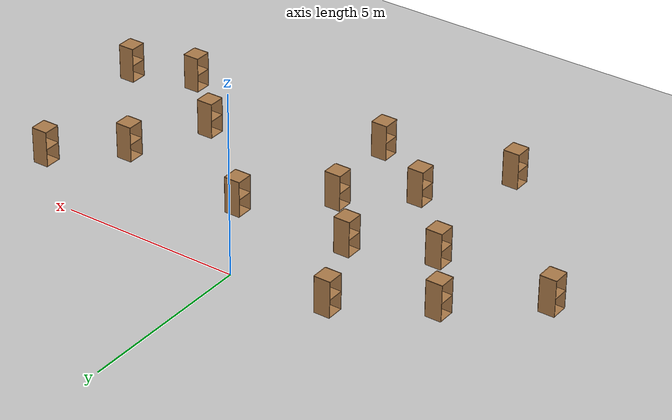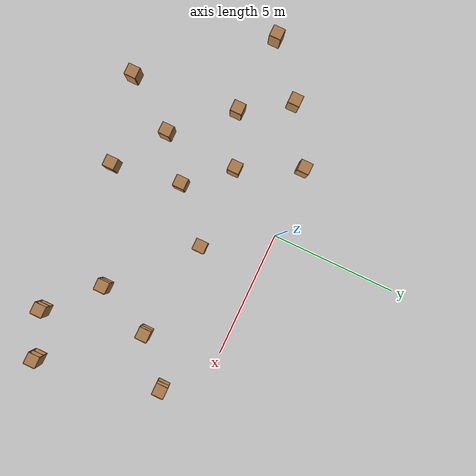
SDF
<sdf version="1.6">
 <world name="default">
  <model name="ground_plane">
   <static>1</static>
   <link name="link">
    <collision name="collision">
     <geometry><plane><normal>0 0 1</normal><size>100 100</size></plane></geometry>
     <surface><friction><ode><mu>100</mu><mu2>50</mu2></ode></friction></surface>
    </collision>
    <visual name="visual">
     <cast_shadows>0</cast_shadows>
     <geometry><plane><normal>0 0 1</normal><size>100 100</size></plane></geometry>
     <material>
      <script><uri>file://media/materials/scripts/gazebo.material</uri><name>Gazebo/Grey</name></script>
     </material>
    </visual>
   </link>
  </model>
  <model name="cabinet_3">
   <static>1</static>
   <link name="cabinet_bottom_plate">
    <inertial>
     <pose>0 0 -1 0 -0 0</pose>
     <inertia><ixx>2.05</ixx><ixy>0</ixy><ixz>0</ixz><iyy>2.05</iyy><iyz>0</iyz><izz>2.05</izz></inertia>
     <mass>25</mass>
    </inertial>
    <collision name="cabinet_bottom_plate_geom">
     <pose>0 0 0.01 0 -0 0</pose>
     <geometry><box><size>0.45 0.45 0.02</size></box></geometry>
    </collision>
    <visual name="cabinet_bottom_plate_geom_visual">
     <pose>0 0 0.01 0 -0 0</pose>
     <geometry><box><size>0.45 0.45 0.02</size></box></geometry>
     <material>
      <script><uri>file://media/materials/scripts/gazebo.material</uri><name>Gazebo/Wood</name></script>
     </material>
    </visual>
    <collision name="cabinet_bottom_plate_geom_cabinet_back_plate">
     <pose>0.235 0 0.51 0 -0 0</pose>
     <geometry><box><size>0.02 0.45 1.02</size></box></geometry>
    </collision>
    <visual name="cabinet_bottom_plate_geom_cabinet_back_plate_visual">
     <pose>0.235 0 0.51 0 -0 0</pose>
     <geometry><box><size>0.02 0.45 1.02</size></box></geometry>
     <material>
      <script><uri>file://media/materials/scripts/gazebo.material</uri><name>Gazebo/Wood</name></script>
     </material>
    </visual>
    <collision name="cabinet_bottom_plate_geom_cabinet_left_plate">
     <pose>0 0.235 0.51 0 -0 0</pose>
     <geometry><box><size>0.45 0.02 1.02</size></box></geometry>
    </collision>
    <visual name="cabinet_bottom_plate_geom_cabinet_left_plate_visual">
     <pose>0 0.235 0.51 0 -0 0</pose>
     <geometry><box><size>0.45 0.02 1.02</size></box></geometry>
     <material>
      <script><uri>file://media/materials/scripts/gazebo.material</uri><name>Gazebo/Wood</name></script>
     </material>
    </visual>
    <collision name="cabinet_bottom_plate_geom_cabinet_middle_plate">
     <pose>0 0 0.51 0 -0 0</pose>
     <geometry><box><size>0.45 0.45 0.02</size></box></geometry>
    </collision>
    <visual name="cabinet_bottom_plate_geom_cabinet_middle_plate_visual">
     <pose>0 0 0.51 0 -0 0</pose>
     <geometry><box><size>0.45 0.45 0.02</size></box></geometry>
     <material>
      <script><uri>file://media/materials/scripts/gazebo.material</uri><name>Gazebo/Wood</name></script>
     </material>
    </visual>
    <collision name="cabinet_bottom_plate_geom_cabinet_right_plate">
     <pose>0 -0.235 0.51 0 -0 0</pose>
     <geometry><box><size>0.45 0.02 1.02</size></box></geometry>
    </collision>
    <visual name="cabinet_bottom_plate_geom_cabinet_right_plate_visual">
     <pose>0 -0.235 0.51 0 -0 0</pose>
     <geometry><box><size>0.45 0.02 1.02</size></box></geometry>
     <material>
      <script><uri>file://media/materials/scripts/gazebo.material</uri><name>Gazebo/Wood</name></script>
     </material>
    </visual>
    <collision name="cabinet_bottom_plate_geom_cabinet_top_plate">
     <pose>0 0 1.01 0 -0 0</pose>
     <geometry><box><size>0.45 0.45 0.02</size></box></geometry>
    </collision>
    <visual name="cabinet_bottom_plate_geom_cabinet_top_plate_visual">
     <pose>0 0 1.01 0 -0 0</pose>
     <geometry><box><size>0.45 0.45 0.02</size></box></geometry>
     <material>
      <script><uri>file://media/materials/scripts/gazebo.material</uri><name>Gazebo/Wood</name></script>
     </material>
    </visual>
   </link>
   <pose>7.07993 -1.47835 0 0 -0 0</pose>
  </model>
  <model name="cabinet_4">
   <static>1</static>
   <link name="cabinet_bottom_plate">
    <inertial>
     <pose>0 0 -1 0 -0 0</pose>
     <inertia><ixx>2.05</ixx><ixy>0</ixy><ixz>0</ixz><iyy>2.05</iyy><iyz>0</iyz><izz>2.05</izz></inertia>
     <mass>25</mass>
    </inertial>
    <collision name="cabinet_bottom_plate_geom">
     <pose>0 0 0.01 0 -0 0</pose>
     <geometry><box><size>0.45 0.45 0.02</size></box></geometry>
    </collision>
    <visual name="cabinet_bottom_plate_geom_visual">
     <pose>0 0 0.01 0 -0 0</pose>
     <geometry><box><size>0.45 0.45 0.02</size></box></geometry>
     <material>
      <script><uri>file://media/materials/scripts/gazebo.material</uri><name>Gazebo/Wood</name></script>
     </material>
    </visual>
    <collision name="cabinet_bottom_plate_geom_cabinet_back_plate">
     <pose>0.235 0 0.51 0 -0 0</pose>
     <geometry><box><size>0.02 0.45 1.02</size></box></geometry>
    </collision>
    <visual name="cabinet_bottom_plate_geom_cabinet_back_plate_visual">
     <pose>0.235 0 0.51 0 -0 0</pose>
     <geometry><box><size>0.02 0.45 1.02</size></box></geometry>
     <material>
      <script><uri>file://media/materials/scripts/gazebo.material</uri><name>Gazebo/Wood</name></script>
     </material>
    </visual>
    <collision name="cabinet_bottom_plate_geom_cabinet_left_plate">
     <pose>0 0.235 0.51 0 -0 0</pose>
     <geometry><box><size>0.45 0.02 1.02</size></box></geometry>
    </collision>
    <visual name="cabinet_bottom_plate_geom_cabinet_left_plate_visual">
     <pose>0 0.235 0.51 0 -0 0</pose>
     <geometry><box><size>0.45 0.02 1.02</size></box></geometry>
     <material>
      <script><uri>file://media/materials/scripts/gazebo.material</uri><name>Gazebo/Wood</name></script>
     </material>
    </visual>
    <collision name="cabinet_bottom_plate_geom_cabinet_middle_plate">
     <pose>0 0 0.51 0 -0 0</pose>
     <geometry><box><size>0.45 0.45 0.02</size></box></geometry>
    </collision>
    <visual name="cabinet_bottom_plate_geom_cabinet_middle_plate_visual">
     <pose>0 0 0.51 0 -0 0</pose>
     <geometry><box><size>0.45 0.45 0.02</size></box></geometry>
     <material>
      <script><uri>file://media/materials/scripts/gazebo.material</uri><name>Gazebo/Wood</name></script>
     </material>
    </visual>
    <collision name="cabinet_bottom_plate_geom_cabinet_right_plate">
     <pose>0 -0.235 0.51 0 -0 0</pose>
     <geometry><box><size>0.45 0.02 1.02</size></box></geometry>
    </collision>
    <visual name="cabinet_bottom_plate_geom_cabinet_right_plate_visual">
     <pose>0 -0.235 0.51 0 -0 0</pose>
     <geometry><box><size>0.45 0.02 1.02</size></box></geometry>
     <material>
      <script><uri>file://media/materials/scripts/gazebo.material</uri><name>Gazebo/Wood</name></script>
     </material>
    </visual>
    <collision name="cabinet_bottom_plate_geom_cabinet_top_plate">
     <pose>0 0 1.01 0 -0 0</pose>
     <geometry><box><size>0.45 0.45 0.02</size></box></geometry>
    </collision>
    <visual name="cabinet_bottom_plate_geom_cabinet_top_plate_visual">
     <pose>0 0 1.01 0 -0 0</pose>
     <geometry><box><size>0.45 0.45 0.02</size></box></geometry>
     <material>
      <script><uri>file://media/materials/scripts/gazebo.material</uri><name>Gazebo/Wood</name></script>
     </material>
    </visual>
   </link>
   <pose>8.0931 -6.2604 0 0 -0 0</pose>
  </model>
  <model name="cabinet_5">
   <static>1</static>
   <link name="cabinet_bottom_plate">
    <inertial>
     <pose>0 0 -1 0 -0 0</pose>
     <inertia><ixx>2.05</ixx><ixy>0</ixy><ixz>0</ixz><iyy>2.05</iyy><iyz>0</iyz><izz>2.05</izz></inertia>
     <mass>25</mass>
    </inertial>
    <collision name="cabinet_bottom_plate_geom">
     <pose>0 0 0.01 0 -0 0</pose>
     <geometry><box><size>0.45 0.45 0.02</size></box></geometry>
    </collision>
    <visual name="cabinet_bottom_plate_geom_visual">
     <pose>0 0 0.01 0 -0 0</pose>
     <geometry><box><size>0.45 0.45 0.02</size></box></geometry>
     <material>
      <script><uri>file://media/materials/scripts/gazebo.material</uri><name>Gazebo/Wood</name></script>
     </material>
    </visual>
    <collision name="cabinet_bottom_plate_geom_cabinet_back_plate">
     <pose>0.235 0 0.51 0 -0 0</pose>
     <geometry><box><size>0.02 0.45 1.02</size></box></geometry>
    </collision>
    <visual name="cabinet_bottom_plate_geom_cabinet_back_plate_visual">
     <pose>0.235 0 0.51 0 -0 0</pose>
     <geometry><box><size>0.02 0.45 1.02</size></box></geometry>
     <material>
      <script><uri>file://media/materials/scripts/gazebo.material</uri><name>Gazebo/Wood</name></script>
     </material>
    </visual>
    <collision name="cabinet_bottom_plate_geom_cabinet_left_plate">
     <pose>0 0.235 0.51 0 -0 0</pose>
     <geometry><box><size>0.45 0.02 1.02</size></box></geometry>
    </collision>
    <visual name="cabinet_bottom_plate_geom_cabinet_left_plate_visual">
     <pose>0 0.235 0.51 0 -0 0</pose>
     <geometry><box><size>0.45 0.02 1.02</size></box></geometry>
     <material>
      <script><uri>file://media/materials/scripts/gazebo.material</uri><name>Gazebo/Wood</name></script>
     </material>
    </visual>
    <collision name="cabinet_bottom_plate_geom_cabinet_middle_plate">
     <pose>0 0 0.51 0 -0 0</pose>
     <geometry><box><size>0.45 0.45 0.02</size></box></geometry>
    </collision>
    <visual name="cabinet_bottom_plate_geom_cabinet_middle_plate_visual">
     <pose>0 0 0.51 0 -0 0</pose>
     <geometry><box><size>0.45 0.45 0.02</size></box></geometry>
     <material>
      <script><uri>file://media/materials/scripts/gazebo.material</uri><name>Gazebo/Wood</name></script>
     </material>
    </visual>
    <collision name="cabinet_bottom_plate_geom_cabinet_right_plate">
     <pose>0 -0.235 0.51 0 -0 0</pose>
     <geometry><box><size>0.45 0.02 1.02</size></box></geometry>
    </collision>
    <visual name="cabinet_bottom_plate_geom_cabinet_right_plate_visual">
     <pose>0 -0.235 0.51 0 -0 0</pose>
     <geometry><box><size>0.45 0.02 1.02</size></box></geometry>
     <material>
      <script><uri>file://media/materials/scripts/gazebo.material</uri><name>Gazebo/Wood</name></script>
     </material>
    </visual>
    <collision name="cabinet_bottom_plate_geom_cabinet_top_plate">
     <pose>0 0 1.01 0 -0 0</pose>
     <geometry><box><size>0.45 0.45 0.02</size></box></geometry>
    </collision>
    <visual name="cabinet_bottom_plate_geom_cabinet_top_plate_visual">
     <pose>0 0 1.01 0 -0 0</pose>
     <geometry><box><size>0.45 0.45 0.02</size></box></geometry>
     <material>
      <script><uri>file://media/materials/scripts/gazebo.material</uri><name>Gazebo/Wood</name></script>
     </material>
    </visual>
   </link>
   <pose>5.48638 -2.93492 0 0 -0 0</pose>
  </model>
  <model name="cabinet_6">
   <static>1</static>
   <link name="cabinet_bottom_plate">
    <inertial>
     <pose>0 0 -1 0 -0 0</pose>
     <inertia><ixx>2.05</ixx><ixy>0</ixy><ixz>0</ixz><iyy>2.05</iyy><iyz>0</iyz><izz>2.05</izz></inertia>
     <mass>25</mass>
    </inertial>
    <collision name="cabinet_bottom_plate_geom">
     <pose>0 0 0.01 0 -0 0</pose>
     <geometry><box><size>0.45 0.45 0.02</size></box></geometry>
    </collision>
    <visual name="cabinet_bottom_plate_geom_visual">
     <pose>0 0 0.01 0 -0 0</pose>
     <geometry><box><size>0.45 0.45 0.02</size></box></geometry>
     <material>
      <script><uri>file://media/materials/scripts/gazebo.material</uri><name>Gazebo/Wood</name></script>
     </material>
    </visual>
    <collision name="cabinet_bottom_plate_geom_cabinet_back_plate">
     <pose>0.235 0 0.51 0 -0 0</pose>
     <geometry><box><size>0.02 0.45 1.02</size></box></geometry>
    </collision>
    <visual name="cabinet_bottom_plate_geom_cabinet_back_plate_visual">
     <pose>0.235 0 0.51 0 -0 0</pose>
     <geometry><box><size>0.02 0.45 1.02</size></box></geometry>
     <material>
      <script><uri>file://media/materials/scripts/gazebo.material</uri><name>Gazebo/Wood</name></script>
     </material>
    </visual>
    <collision name="cabinet_bottom_plate_geom_cabinet_left_plate">
     <pose>0 0.235 0.51 0 -0 0</pose>
     <geometry><box><size>0.45 0.02 1.02</size></box></geometry>
    </collision>
    <visual name="cabinet_bottom_plate_geom_cabinet_left_plate_visual">
     <pose>0 0.235 0.51 0 -0 0</pose>
     <geometry><box><size>0.45 0.02 1.02</size></box></geometry>
     <material>
      <script><uri>file://media/materials/scripts/gazebo.material</uri><name>Gazebo/Wood</name></script>
     </material>
    </visual>
    <collision name="cabinet_bottom_plate_geom_cabinet_middle_plate">
     <pose>0 0 0.51 0 -0 0</pose>
     <geometry><box><size>0.45 0.45 0.02</size></box></geometry>
    </collision>
    <visual name="cabinet_bottom_plate_geom_cabinet_middle_plate_visual">
     <pose>0 0 0.51 0 -0 0</pose>
     <geometry><box><size>0.45 0.45 0.02</size></box></geometry>
     <material>
      <script><uri>file://media/materials/scripts/gazebo.material</uri><name>Gazebo/Wood</name></script>
     </material>
    </visual>
    <collision name="cabinet_bottom_plate_geom_cabinet_right_plate">
     <pose>0 -0.235 0.51 0 -0 0</pose>
     <geometry><box><size>0.45 0.02 1.02</size></box></geometry>
    </collision>
    <visual name="cabinet_bottom_plate_geom_cabinet_right_plate_visual">
     <pose>0 -0.235 0.51 0 -0 0</pose>
     <geometry><box><size>0.45 0.02 1.02</size></box></geometry>
     <material>
      <script><uri>file://media/materials/scripts/gazebo.material</uri><name>Gazebo/Wood</name></script>
     </material>
    </visual>
    <collision name="cabinet_bottom_plate_geom_cabinet_top_plate">
     <pose>0 0 1.01 0 -0 0</pose>
     <geometry><box><size>0.45 0.45 0.02</size></box></geometry>
    </collision>
    <visual name="cabinet_bottom_plate_geom_cabinet_top_plate_visual">
     <pose>0 0 1.01 0 -0 0</pose>
     <geometry><box><size>0.45 0.45 0.02</size></box></geometry>
     <material>
      <script><uri>file://media/materials/scripts/gazebo.material</uri><name>Gazebo/Wood</name></script>
     </material>
    </visual>
   </link>
   <pose>4.53058 -5.11799 0 0 -0 0</pose>
  </model>
  <model name="cabinet_8">
   <static>1</static>
   <link name="cabinet_bottom_plate">
    <inertial>
     <pose>0 0 -1 0 -0 0</pose>
     <inertia><ixx>2.05</ixx><ixy>0</ixy><ixz>0</ixz><iyy>2.05</iyy><iyz>0</iyz><izz>2.05</izz></inertia>
     <mass>25</mass>
    </inertial>
    <collision name="cabinet_bottom_plate_geom">
     <pose>0 0 0.01 0 -0 0</pose>
     <geometry><box><size>0.45 0.45 0.02</size></box></geometry>
    </collision>
    <visual name="cabinet_bottom_plate_geom_visual">
     <pose>0 0 0.01 0 -0 0</pose>
     <geometry><box><size>0.45 0.45 0.02</size></box></geometry>
     <material>
      <script><uri>file://media/materials/scripts/gazebo.material</uri><name>Gazebo/Wood</name></script>
     </material>
    </visual>
    <collision name="cabinet_bottom_plate_geom_cabinet_back_plate">
     <pose>0.235 0 0.51 0 -0 0</pose>
     <geometry><box><size>0.02 0.45 1.02</size></box></geometry>
    </collision>
    <visual name="cabinet_bottom_plate_geom_cabinet_back_plate_visual">
     <pose>0.235 0 0.51 0 -0 0</pose>
     <geometry><box><size>0.02 0.45 1.02</size></box></geometry>
     <material>
      <script><uri>file://media/materials/scripts/gazebo.material</uri><name>Gazebo/Wood</name></script>
     </material>
    </visual>
    <collision name="cabinet_bottom_plate_geom_cabinet_left_plate">
     <pose>0 0.235 0.51 0 -0 0</pose>
     <geometry><box><size>0.45 0.02 1.02</size></box></geometry>
    </collision>
    <visual name="cabinet_bottom_plate_geom_cabinet_left_plate_visual">
     <pose>0 0.235 0.51 0 -0 0</pose>
     <geometry><box><size>0.45 0.02 1.02</size></box></geometry>
     <material>
      <script><uri>file://media/materials/scripts/gazebo.material</uri><name>Gazebo/Wood</name></script>
     </material>
    </visual>
    <collision name="cabinet_bottom_plate_geom_cabinet_middle_plate">
     <pose>0 0 0.51 0 -0 0</pose>
     <geometry><box><size>0.45 0.45 0.02</size></box></geometry>
    </collision>
    <visual name="cabinet_bottom_plate_geom_cabinet_middle_plate_visual">
     <pose>0 0 0.51 0 -0 0</pose>
     <geometry><box><size>0.45 0.45 0.02</size></box></geometry>
     <material>
      <script><uri>file://media/materials/scripts/gazebo.material</uri><name>Gazebo/Wood</name></script>
     </material>
    </visual>
    <collision name="cabinet_bottom_plate_geom_cabinet_right_plate">
     <pose>0 -0.235 0.51 0 -0 0</pose>
     <geometry><box><size>0.45 0.02 1.02</size></box></geometry>
    </collision>
    <visual name="cabinet_bottom_plate_geom_cabinet_right_plate_visual">
     <pose>0 -0.235 0.51 0 -0 0</pose>
     <geometry><box><size>0.45 0.02 1.02</size></box></geometry>
     <material>
      <script><uri>file://media/materials/scripts/gazebo.material</uri><name>Gazebo/Wood</name></script>
     </material>
    </visual>
    <collision name="cabinet_bottom_plate_geom_cabinet_top_plate">
     <pose>0 0 1.01 0 -0 0</pose>
     <geometry><box><size>0.45 0.45 0.02</size></box></geometry>
    </collision>
    <visual name="cabinet_bottom_plate_geom_cabinet_top_plate_visual">
     <pose>0 0 1.01 0 -0 0</pose>
     <geometry><box><size>0.45 0.45 0.02</size></box></geometry>
     <material>
      <script><uri>file://media/materials/scripts/gazebo.material</uri><name>Gazebo/Wood</name></script>
     </material>
    </visual>
   </link>
   <pose>6.33507 -6.86628 0 0 -0 0</pose>
  </model>
  <model name="cabinet_17">
   <static>1</static>
   <link name="cabinet_bottom_plate">
    <inertial>
     <pose>0 0 -1 0 -0 0</pose>
     <inertia><ixx>2.05</ixx><ixy>0</ixy><ixz>0</ixz><iyy>2.05</iyy><iyz>0</iyz><izz>2.05</izz></inertia>
     <mass>25</mass>
    </inertial>
    <collision name="cabinet_bottom_plate_geom">
     <pose>0 0 0.01 0 -0 0</pose>
     <geometry><box><size>0.45 0.45 0.02</size></box></geometry>
    </collision>
    <visual name="cabinet_bottom_plate_geom_visual">
     <pose>0 0 0.01 0 -0 0</pose>
     <geometry><box><size>0.45 0.45 0.02</size></box></geometry>
     <material>
      <script><uri>file://media/materials/scripts/gazebo.material</uri><name>Gazebo/Wood</name></script>
     </material>
    </visual>
    <collision name="cabinet_bottom_plate_geom_cabinet_back_plate">
     <pose>0.235 0 0.51 0 -0 0</pose>
     <geometry><box><size>0.02 0.45 1.02</size></box></geometry>
    </collision>
    <visual name="cabinet_bottom_plate_geom_cabinet_back_plate_visual">
     <pose>0.235 0 0.51 0 -0 0</pose>
     <geometry><box><size>0.02 0.45 1.02</size></box></geometry>
     <material>
      <script><uri>file://media/materials/scripts/gazebo.material</uri><name>Gazebo/Wood</name></script>
     </material>
    </visual>
    <collision name="cabinet_bottom_plate_geom_cabinet_left_plate">
     <pose>0 0.235 0.51 0 -0 0</pose>
     <geometry><box><size>0.45 0.02 1.02</size></box></geometry>
    </collision>
    <visual name="cabinet_bottom_plate_geom_cabinet_left_plate_visual">
     <pose>0 0.235 0.51 0 -0 0</pose>
     <geometry><box><size>0.45 0.02 1.02</size></box></geometry>
     <material>
      <script><uri>file://media/materials/scripts/gazebo.material</uri><name>Gazebo/Wood</name></script>
     </material>
    </visual>
    <collision name="cabinet_bottom_plate_geom_cabinet_middle_plate">
     <pose>0 0 0.51 0 -0 0</pose>
     <geometry><box><size>0.45 0.45 0.02</size></box></geometry>
    </collision>
    <visual name="cabinet_bottom_plate_geom_cabinet_middle_plate_visual">
     <pose>0 0 0.51 0 -0 0</pose>
     <geometry><box><size>0.45 0.45 0.02</size></box></geometry>
     <material>
      <script><uri>file://media/materials/scripts/gazebo.material</uri><name>Gazebo/Wood</name></script>
     </material>
    </visual>
    <collision name="cabinet_bottom_plate_geom_cabinet_right_plate">
     <pose>0 -0.235 0.51 0 -0 0</pose>
     <geometry><box><size>0.45 0.02 1.02</size></box></geometry>
    </collision>
    <visual name="cabinet_bottom_plate_geom_cabinet_right_plate_visual">
     <pose>0 -0.235 0.51 0 -0 0</pose>
     <geometry><box><size>0.45 0.02 1.02</size></box></geometry>
     <material>
      <script><uri>file://media/materials/scripts/gazebo.material</uri><name>Gazebo/Wood</name></script>
     </material>
    </visual>
    <collision name="cabinet_bottom_plate_geom_cabinet_top_plate">
     <pose>0 0 1.01 0 -0 0</pose>
     <geometry><box><size>0.45 0.45 0.02</size></box></geometry>
    </collision>
    <visual name="cabinet_bottom_plate_geom_cabinet_top_plate_visual">
     <pose>0 0 1.01 0 -0 0</pose>
     <geometry><box><size>0.45 0.45 0.02</size></box></geometry>
     <material>
      <script><uri>file://media/materials/scripts/gazebo.material</uri><name>Gazebo/Wood</name></script>
     </material>
    </visual>
   </link>
   <pose>-1.67139 -2.51764 0 0 -0 0</pose>
  </model>
  <model name="cabinet_18">
   <static>1</static>
   <link name="cabinet_bottom_plate">
    <inertial>
     <pose>0 0 -1 0 -0 0</pose>
     <inertia><ixx>2.05</ixx><ixy>0</ixy><ixz>0</ixz><iyy>2.05</iyy><iyz>0</iyz><izz>2.05</izz></inertia>
     <mass>25</mass>
    </inertial>
    <collision name="cabinet_bottom_plate_geom">
     <pose>0 0 0.01 0 -0 0</pose>
     <geometry><box><size>0.45 0.45 0.02</size></box></geometry>
    </collision>
    <visual name="cabinet_bottom_plate_geom_visual">
     <pose>0 0 0.01 0 -0 0</pose>
     <geometry><box><size>0.45 0.45 0.02</size></box></geometry>
     <material>
      <script><uri>file://media/materials/scripts/gazebo.material</uri><name>Gazebo/Wood</name></script>
     </material>
    </visual>
    <collision name="cabinet_bottom_plate_geom_cabinet_back_plate">
     <pose>0.235 0 0.51 0 -0 0</pose>
     <geometry><box><size>0.02 0.45 1.02</size></box></geometry>
    </collision>
    <visual name="cabinet_bottom_plate_geom_cabinet_back_plate_visual">
     <pose>0.235 0 0.51 0 -0 0</pose>
     <geometry><box><size>0.02 0.45 1.02</size></box></geometry>
     <material>
      <script><uri>file://media/materials/scripts/gazebo.material</uri><name>Gazebo/Wood</name></script>
     </material>
    </visual>
    <collision name="cabinet_bottom_plate_geom_cabinet_left_plate">
     <pose>0 0.235 0.51 0 -0 0</pose>
     <geometry><box><size>0.45 0.02 1.02</size></box></geometry>
    </collision>
    <visual name="cabinet_bottom_plate_geom_cabinet_left_plate_visual">
     <pose>0 0.235 0.51 0 -0 0</pose>
     <geometry><box><size>0.45 0.02 1.02</size></box></geometry>
     <material>
      <script><uri>file://media/materials/scripts/gazebo.material</uri><name>Gazebo/Wood</name></script>
     </material>
    </visual>
    <collision name="cabinet_bottom_plate_geom_cabinet_middle_plate">
     <pose>0 0 0.51 0 -0 0</pose>
     <geometry><box><size>0.45 0.45 0.02</size></box></geometry>
    </collision>
    <visual name="cabinet_bottom_plate_geom_cabinet_middle_plate_visual">
     <pose>0 0 0.51 0 -0 0</pose>
     <geometry><box><size>0.45 0.45 0.02</size></box></geometry>
     <material>
      <script><uri>file://media/materials/scripts/gazebo.material</uri><name>Gazebo/Wood</name></script>
     </material>
    </visual>
    <collision name="cabinet_bottom_plate_geom_cabinet_right_plate">
     <pose>0 -0.235 0.51 0 -0 0</pose>
     <geometry><box><size>0.45 0.02 1.02</size></box></geometry>
    </collision>
    <visual name="cabinet_bottom_plate_geom_cabinet_right_plate_visual">
     <pose>0 -0.235 0.51 0 -0 0</pose>
     <geometry><box><size>0.45 0.02 1.02</size></box></geometry>
     <material>
      <script><uri>file://media/materials/scripts/gazebo.material</uri><name>Gazebo/Wood</name></script>
     </material>
    </visual>
    <collision name="cabinet_bottom_plate_geom_cabinet_top_plate">
     <pose>0 0 1.01 0 -0 0</pose>
     <geometry><box><size>0.45 0.45 0.02</size></box></geometry>
    </collision>
    <visual name="cabinet_bottom_plate_geom_cabinet_top_plate_visual">
     <pose>0 0 1.01 0 -0 0</pose>
     <geometry><box><size>0.45 0.45 0.02</size></box></geometry>
     <material>
      <script><uri>file://media/materials/scripts/gazebo.material</uri><name>Gazebo/Wood</name></script>
     </material>
    </visual>
   </link>
   <pose>-0.257079 -4.13794 0 0 -0 0</pose>
  </model>
  <model name="cabinet_19">
   <static>1</static>
   <link name="cabinet_bottom_plate">
    <inertial>
     <pose>0 0 -1 0 -0 0</pose>
     <inertia><ixx>2.05</ixx><ixy>0</ixy><ixz>0</ixz><iyy>2.05</iyy><iyz>0</iyz><izz>2.05</izz></inertia>
     <mass>25</mass>
    </inertial>
    <collision name="cabinet_bottom_plate_geom">
     <pose>0 0 0.01 0 -0 0</pose>
     <geometry><box><size>0.45 0.45 0.02</size></box></geometry>
    </collision>
    <visual name="cabinet_bottom_plate_geom_visual">
     <pose>0 0 0.01 0 -0 0</pose>
     <geometry><box><size>0.45 0.45 0.02</size></box></geometry>
     <material>
      <script><uri>file://media/materials/scripts/gazebo.material</uri><name>Gazebo/Wood</name></script>
     </material>
    </visual>
    <collision name="cabinet_bottom_plate_geom_cabinet_back_plate">
     <pose>0.235 0 0.51 0 -0 0</pose>
     <geometry><box><size>0.02 0.45 1.02</size></box></geometry>
    </collision>
    <visual name="cabinet_bottom_plate_geom_cabinet_back_plate_visual">
     <pose>0.235 0 0.51 0 -0 0</pose>
     <geometry><box><size>0.02 0.45 1.02</size></box></geometry>
     <material>
      <script><uri>file://media/materials/scripts/gazebo.material</uri><name>Gazebo/Wood</name></script>
     </material>
    </visual>
    <collision name="cabinet_bottom_plate_geom_cabinet_left_plate">
     <pose>0 0.235 0.51 0 -0 0</pose>
     <geometry><box><size>0.45 0.02 1.02</size></box></geometry>
    </collision>
    <visual name="cabinet_bottom_plate_geom_cabinet_left_plate_visual">
     <pose>0 0.235 0.51 0 -0 0</pose>
     <geometry><box><size>0.45 0.02 1.02</size></box></geometry>
     <material>
      <script><uri>file://media/materials/scripts/gazebo.material</uri><name>Gazebo/Wood</name></script>
     </material>
    </visual>
    <collision name="cabinet_bottom_plate_geom_cabinet_middle_plate">
     <pose>0 0 0.51 0 -0 0</pose>
     <geometry><box><size>0.45 0.45 0.02</size></box></geometry>
    </collision>
    <visual name="cabinet_bottom_plate_geom_cabinet_middle_plate_visual">
     <pose>0 0 0.51 0 -0 0</pose>
     <geometry><box><size>0.45 0.45 0.02</size></box></geometry>
     <material>
      <script><uri>file://media/materials/scripts/gazebo.material</uri><name>Gazebo/Wood</name></script>
     </material>
    </visual>
    <collision name="cabinet_bottom_plate_geom_cabinet_right_plate">
     <pose>0 -0.235 0.51 0 -0 0</pose>
     <geometry><box><size>0.45 0.02 1.02</size></box></geometry>
    </collision>
    <visual name="cabinet_bottom_plate_geom_cabinet_right_plate_visual">
     <pose>0 -0.235 0.51 0 -0 0</pose>
     <geometry><box><size>0.45 0.02 1.02</size></box></geometry>
     <material>
      <script><uri>file://media/materials/scripts/gazebo.material</uri><name>Gazebo/Wood</name></script>
     </material>
    </visual>
    <collision name="cabinet_bottom_plate_geom_cabinet_top_plate">
     <pose>0 0 1.01 0 -0 0</pose>
     <geometry><box><size>0.45 0.45 0.02</size></box></geometry>
    </collision>
    <visual name="cabinet_bottom_plate_geom_cabinet_top_plate_visual">
     <pose>0 0 1.01 0 -0 0</pose>
     <geometry><box><size>0.45 0.45 0.02</size></box></geometry>
     <material>
      <script><uri>file://media/materials/scripts/gazebo.material</uri><name>Gazebo/Wood</name></script>
     </material>
    </visual>
   </link>
   <pose>1.60178 -2.43205 0 0 -0 0</pose>
  </model>
  <model name="cabinet_20">
   <static>1</static>
   <link name="cabinet_bottom_plate">
    <inertial>
     <pose>0 0 -1 0 -0 0</pose>
     <inertia><ixx>2.05</ixx><ixy>0</ixy><ixz>0</ixz><iyy>2.05</iyy><iyz>0</iyz><izz>2.05</izz></inertia>
     <mass>25</mass>
    </inertial>
    <collision name="cabinet_bottom_plate_geom">
     <pose>0 0 0.01 0 -0 0</pose>
     <geometry><box><size>0.45 0.45 0.02</size></box></geometry>
    </collision>
    <visual name="cabinet_bottom_plate_geom_visual">
     <pose>0 0 0.01 0 -0 0</pose>
     <geometry><box><size>0.45 0.45 0.02</size></box></geometry>
     <material>
      <script><uri>file://media/materials/scripts/gazebo.material</uri><name>Gazebo/Wood</name></script>
     </material>
    </visual>
    <collision name="cabinet_bottom_plate_geom_cabinet_back_plate">
     <pose>0.235 0 0.51 0 -0 0</pose>
     <geometry><box><size>0.02 0.45 1.02</size></box></geometry>
    </collision>
    <visual name="cabinet_bottom_plate_geom_cabinet_back_plate_visual">
     <pose>0.235 0 0.51 0 -0 0</pose>
     <geometry><box><size>0.02 0.45 1.02</size></box></geometry>
     <material>
      <script><uri>file://media/materials/scripts/gazebo.material</uri><name>Gazebo/Wood</name></script>
     </material>
    </visual>
    <collision name="cabinet_bottom_plate_geom_cabinet_left_plate">
     <pose>0 0.235 0.51 0 -0 0</pose>
     <geometry><box><size>0.45 0.02 1.02</size></box></geometry>
    </collision>
    <visual name="cabinet_bottom_plate_geom_cabinet_left_plate_visual">
     <pose>0 0.235 0.51 0 -0 0</pose>
     <geometry><box><size>0.45 0.02 1.02</size></box></geometry>
     <material>
      <script><uri>file://media/materials/scripts/gazebo.material</uri><name>Gazebo/Wood</name></script>
     </material>
    </visual>
    <collision name="cabinet_bottom_plate_geom_cabinet_middle_plate">
     <pose>0 0 0.51 0 -0 0</pose>
     <geometry><box><size>0.45 0.45 0.02</size></box></geometry>
    </collision>
    <visual name="cabinet_bottom_plate_geom_cabinet_middle_plate_visual">
     <pose>0 0 0.51 0 -0 0</pose>
     <geometry><box><size>0.45 0.45 0.02</size></box></geometry>
     <material>
      <script><uri>file://media/materials/scripts/gazebo.material</uri><name>Gazebo/Wood</name></script>
     </material>
    </visual>
    <collision name="cabinet_bottom_plate_geom_cabinet_right_plate">
     <pose>0 -0.235 0.51 0 -0 0</pose>
     <geometry><box><size>0.45 0.02 1.02</size></box></geometry>
    </collision>
    <visual name="cabinet_bottom_plate_geom_cabinet_right_plate_visual">
     <pose>0 -0.235 0.51 0 -0 0</pose>
     <geometry><box><size>0.45 0.02 1.02</size></box></geometry>
     <material>
      <script><uri>file://media/materials/scripts/gazebo.material</uri><name>Gazebo/Wood</name></script>
     </material>
    </visual>
    <collision name="cabinet_bottom_plate_geom_cabinet_top_plate">
     <pose>0 0 1.01 0 -0 0</pose>
     <geometry><box><size>0.45 0.45 0.02</size></box></geometry>
    </collision>
    <visual name="cabinet_bottom_plate_geom_cabinet_top_plate_visual">
     <pose>0 0 1.01 0 -0 0</pose>
     <geometry><box><size>0.45 0.45 0.02</size></box></geometry>
     <material>
      <script><uri>file://media/materials/scripts/gazebo.material</uri><name>Gazebo/Wood</name></script>
     </material>
    </visual>
   </link>
   <pose>-1.83591 -5.49657 0 0 -0 0</pose>
  </model>
  <model name="cabinet_21">
   <static>1</static>
   <link name="cabinet_bottom_plate">
    <inertial>
     <pose>0 0 -1 0 -0 0</pose>
     <inertia><ixx>2.05</ixx><ixy>0</ixy><ixz>0</ixz><iyy>2.05</iyy><iyz>0</iyz><izz>2.05</izz></inertia>
     <mass>25</mass>
    </inertial>
    <collision name="cabinet_bottom_plate_geom">
     <pose>0 0 0.01 0 -0 0</pose>
     <geometry><box><size>0.45 0.45 0.02</size></box></geometry>
    </collision>
    <visual name="cabinet_bottom_plate_geom_visual">
     <pose>0 0 0.01 0 -0 0</pose>
     <geometry><box><size>0.45 0.45 0.02</size></box></geometry>
     <material>
      <script><uri>file://media/materials/scripts/gazebo.material</uri><name>Gazebo/Wood</name></script>
     </material>
    </visual>
    <collision name="cabinet_bottom_plate_geom_cabinet_back_plate">
     <pose>0.235 0 0.51 0 -0 0</pose>
     <geometry><box><size>0.02 0.45 1.02</size></box></geometry>
    </collision>
    <visual name="cabinet_bottom_plate_geom_cabinet_back_plate_visual">
     <pose>0.235 0 0.51 0 -0 0</pose>
     <geometry><box><size>0.02 0.45 1.02</size></box></geometry>
     <material>
      <script><uri>file://media/materials/scripts/gazebo.material</uri><name>Gazebo/Wood</name></script>
     </material>
    </visual>
    <collision name="cabinet_bottom_plate_geom_cabinet_left_plate">
     <pose>0 0.235 0.51 0 -0 0</pose>
     <geometry><box><size>0.45 0.02 1.02</size></box></geometry>
    </collision>
    <visual name="cabinet_bottom_plate_geom_cabinet_left_plate_visual">
     <pose>0 0.235 0.51 0 -0 0</pose>
     <geometry><box><size>0.45 0.02 1.02</size></box></geometry>
     <material>
      <script><uri>file://media/materials/scripts/gazebo.material</uri><name>Gazebo/Wood</name></script>
     </material>
    </visual>
    <collision name="cabinet_bottom_plate_geom_cabinet_middle_plate">
     <pose>0 0 0.51 0 -0 0</pose>
     <geometry><box><size>0.45 0.45 0.02</size></box></geometry>
    </collision>
    <visual name="cabinet_bottom_plate_geom_cabinet_middle_plate_visual">
     <pose>0 0 0.51 0 -0 0</pose>
     <geometry><box><size>0.45 0.45 0.02</size></box></geometry>
     <material>
      <script><uri>file://media/materials/scripts/gazebo.material</uri><name>Gazebo/Wood</name></script>
     </material>
    </visual>
    <collision name="cabinet_bottom_plate_geom_cabinet_right_plate">
     <pose>0 -0.235 0.51 0 -0 0</pose>
     <geometry><box><size>0.45 0.02 1.02</size></box></geometry>
    </collision>
    <visual name="cabinet_bottom_plate_geom_cabinet_right_plate_visual">
     <pose>0 -0.235 0.51 0 -0 0</pose>
     <geometry><box><size>0.45 0.02 1.02</size></box></geometry>
     <material>
      <script><uri>file://media/materials/scripts/gazebo.material</uri><name>Gazebo/Wood</name></script>
     </material>
    </visual>
    <collision name="cabinet_bottom_plate_geom_cabinet_top_plate">
     <pose>0 0 1.01 0 -0 0</pose>
     <geometry><box><size>0.45 0.45 0.02</size></box></geometry>
    </collision>
    <visual name="cabinet_bottom_plate_geom_cabinet_top_plate_visual">
     <pose>0 0 1.01 0 -0 0</pose>
     <geometry><box><size>0.45 0.45 0.02</size></box></geometry>
     <material>
      <script><uri>file://media/materials/scripts/gazebo.material</uri><name>Gazebo/Wood</name></script>
     </material>
    </visual>
   </link>
   <pose>-2.79026 -0.1168 0 0 -0 0</pose>
  </model>
  <model name="cabinet_22">
   <static>1</static>
   <link name="cabinet_bottom_plate">
    <inertial>
     <pose>0 0 -1 0 -0 0</pose>
     <inertia><ixx>2.05</ixx><ixy>0</ixy><ixz>0</ixz><iyy>2.05</iyy><iyz>0</iyz><izz>2.05</izz></inertia>
     <mass>25</mass>
    </inertial>
    <collision name="cabinet_bottom_plate_geom">
     <pose>0 0 0.01 0 -0 0</pose>
     <geometry><box><size>0.45 0.45 0.02</size></box></geometry>
    </collision>
    <visual name="cabinet_bottom_plate_geom_visual">
     <pose>0 0 0.01 0 -0 0</pose>
     <geometry><box><size>0.45 0.45 0.02</size></box></geometry>
     <material>
      <script><uri>file://media/materials/scripts/gazebo.material</uri><name>Gazebo/Wood</name></script>
     </material>
    </visual>
    <collision name="cabinet_bottom_plate_geom_cabinet_back_plate">
     <pose>0.235 0 0.51 0 -0 0</pose>
     <geometry><box><size>0.02 0.45 1.02</size></box></geometry>
    </collision>
    <visual name="cabinet_bottom_plate_geom_cabinet_back_plate_visual">
     <pose>0.235 0 0.51 0 -0 0</pose>
     <geometry><box><size>0.02 0.45 1.02</size></box></geometry>
     <material>
      <script><uri>file://media/materials/scripts/gazebo.material</uri><name>Gazebo/Wood</name></script>
     </material>
    </visual>
    <collision name="cabinet_bottom_plate_geom_cabinet_left_plate">
     <pose>0 0.235 0.51 0 -0 0</pose>
     <geometry><box><size>0.45 0.02 1.02</size></box></geometry>
    </collision>
    <visual name="cabinet_bottom_plate_geom_cabinet_left_plate_visual">
     <pose>0 0.235 0.51 0 -0 0</pose>
     <geometry><box><size>0.45 0.02 1.02</size></box></geometry>
     <material>
      <script><uri>file://media/materials/scripts/gazebo.material</uri><name>Gazebo/Wood</name></script>
     </material>
    </visual>
    <collision name="cabinet_bottom_plate_geom_cabinet_middle_plate">
     <pose>0 0 0.51 0 -0 0</pose>
     <geometry><box><size>0.45 0.45 0.02</size></box></geometry>
    </collision>
    <visual name="cabinet_bottom_plate_geom_cabinet_middle_plate_visual">
     <pose>0 0 0.51 0 -0 0</pose>
     <geometry><box><size>0.45 0.45 0.02</size></box></geometry>
     <material>
      <script><uri>file://media/materials/scripts/gazebo.material</uri><name>Gazebo/Wood</name></script>
     </material>
    </visual>
    <collision name="cabinet_bottom_plate_geom_cabinet_right_plate">
     <pose>0 -0.235 0.51 0 -0 0</pose>
     <geometry><box><size>0.45 0.02 1.02</size></box></geometry>
    </collision>
    <visual name="cabinet_bottom_plate_geom_cabinet_right_plate_visual">
     <pose>0 -0.235 0.51 0 -0 0</pose>
     <geometry><box><size>0.45 0.02 1.02</size></box></geometry>
     <material>
      <script><uri>file://media/materials/scripts/gazebo.material</uri><name>Gazebo/Wood</name></script>
     </material>
    </visual>
    <collision name="cabinet_bottom_plate_geom_cabinet_top_plate">
     <pose>0 0 1.01 0 -0 0</pose>
     <geometry><box><size>0.45 0.45 0.02</size></box></geometry>
    </collision>
    <visual name="cabinet_bottom_plate_geom_cabinet_top_plate_visual">
     <pose>0 0 1.01 0 -0 0</pose>
     <geometry><box><size>0.45 0.45 0.02</size></box></geometry>
     <material>
      <script><uri>file://media/materials/scripts/gazebo.material</uri><name>Gazebo/Wood</name></script>
     </material>
    </visual>
   </link>
   <pose>0.192453 -6.86838 0 0 -0 0</pose>
  </model>
  <model name="cabinet_23">
   <static>1</static>
   <link name="cabinet_bottom_plate">
    <inertial>
     <pose>0 0 -1 0 -0 0</pose>
     <inertia><ixx>2.05</ixx><ixy>0</ixy><ixz>0</ixz><iyy>2.05</iyy><iyz>0</iyz><izz>2.05</izz></inertia>
     <mass>25</mass>
    </inertial>
    <collision name="cabinet_bottom_plate_geom">
     <pose>0 0 0.01 0 -0 0</pose>
     <geometry><box><size>0.45 0.45 0.02</size></box></geometry>
    </collision>
    <visual name="cabinet_bottom_plate_geom_visual">
     <pose>0 0 0.01 0 -0 0</pose>
     <geometry><box><size>0.45 0.45 0.02</size></box></geometry>
     <material>
      <script><uri>file://media/materials/scripts/gazebo.material</uri><name>Gazebo/Wood</name></script>
     </material>
    </visual>
    <collision name="cabinet_bottom_plate_geom_cabinet_back_plate">
     <pose>0.235 0 0.51 0 -0 0</pose>
     <geometry><box><size>0.02 0.45 1.02</size></box></geometry>
    </collision>
    <visual name="cabinet_bottom_plate_geom_cabinet_back_plate_visual">
     <pose>0.235 0 0.51 0 -0 0</pose>
     <geometry><box><size>0.02 0.45 1.02</size></box></geometry>
     <material>
      <script><uri>file://media/materials/scripts/gazebo.material</uri><name>Gazebo/Wood</name></script>
     </material>
    </visual>
    <collision name="cabinet_bottom_plate_geom_cabinet_left_plate">
     <pose>0 0.235 0.51 0 -0 0</pose>
     <geometry><box><size>0.45 0.02 1.02</size></box></geometry>
    </collision>
    <visual name="cabinet_bottom_plate_geom_cabinet_left_plate_visual">
     <pose>0 0.235 0.51 0 -0 0</pose>
     <geometry><box><size>0.45 0.02 1.02</size></box></geometry>
     <material>
      <script><uri>file://media/materials/scripts/gazebo.material</uri><name>Gazebo/Wood</name></script>
     </material>
    </visual>
    <collision name="cabinet_bottom_plate_geom_cabinet_middle_plate">
     <pose>0 0 0.51 0 -0 0</pose>
     <geometry><box><size>0.45 0.45 0.02</size></box></geometry>
    </collision>
    <visual name="cabinet_bottom_plate_geom_cabinet_middle_plate_visual">
     <pose>0 0 0.51 0 -0 0</pose>
     <geometry><box><size>0.45 0.45 0.02</size></box></geometry>
     <material>
      <script><uri>file://media/materials/scripts/gazebo.material</uri><name>Gazebo/Wood</name></script>
     </material>
    </visual>
    <collision name="cabinet_bottom_plate_geom_cabinet_right_plate">
     <pose>0 -0.235 0.51 0 -0 0</pose>
     <geometry><box><size>0.45 0.02 1.02</size></box></geometry>
    </collision>
    <visual name="cabinet_bottom_plate_geom_cabinet_right_plate_visual">
     <pose>0 -0.235 0.51 0 -0 0</pose>
     <geometry><box><size>0.45 0.02 1.02</size></box></geometry>
     <material>
      <script><uri>file://media/materials/scripts/gazebo.material</uri><name>Gazebo/Wood</name></script>
     </material>
    </visual>
    <collision name="cabinet_bottom_plate_geom_cabinet_top_plate">
     <pose>0 0 1.01 0 -0 0</pose>
     <geometry><box><size>0.45 0.45 0.02</size></box></geometry>
    </collision>
    <visual name="cabinet_bottom_plate_geom_cabinet_top_plate_visual">
     <pose>0 0 1.01 0 -0 0</pose>
     <geometry><box><size>0.45 0.45 0.02</size></box></geometry>
     <material>
      <script><uri>file://media/materials/scripts/gazebo.material</uri><name>Gazebo/Wood</name></script>
     </material>
    </visual>
   </link>
   <pose>-3.31998 -7.64861 0 0 -0 0</pose>
  </model>
  <model name="cabinet_24">
   <static>1</static>
   <link name="cabinet_bottom_plate">
    <inertial>
     <pose>0 0 -1 0 -0 0</pose>
     <inertia><ixx>2.05</ixx><ixy>0</ixy><ixz>0</ixz><iyy>2.05</iyy><iyz>0</iyz><izz>2.05</izz></inertia>
     <mass>25</mass>
    </inertial>
    <collision name="cabinet_bottom_plate_geom">
     <pose>0 0 0.01 0 -0 0</pose>
     <geometry><box><size>0.45 0.45 0.02</size></box></geometry>
    </collision>
    <visual name="cabinet_bottom_plate_geom_visual">
     <pose>0 0 0.01 0 -0 0</pose>
     <geometry><box><size>0.45 0.45 0.02</size></box></geometry>
     <material>
      <script><uri>file://media/materials/scripts/gazebo.material</uri><name>Gazebo/Wood</name></script>
     </material>
    </visual>
    <collision name="cabinet_bottom_plate_geom_cabinet_back_plate">
     <pose>0.235 0 0.51 0 -0 0</pose>
     <geometry><box><size>0.02 0.45 1.02</size></box></geometry>
    </collision>
    <visual name="cabinet_bottom_plate_geom_cabinet_back_plate_visual">
     <pose>0.235 0 0.51 0 -0 0</pose>
     <geometry><box><size>0.02 0.45 1.02</size></box></geometry>
     <material>
      <script><uri>file://media/materials/scripts/gazebo.material</uri><name>Gazebo/Wood</name></script>
     </material>
    </visual>
    <collision name="cabinet_bottom_plate_geom_cabinet_left_plate">
     <pose>0 0.235 0.51 0 -0 0</pose>
     <geometry><box><size>0.45 0.02 1.02</size></box></geometry>
    </collision>
    <visual name="cabinet_bottom_plate_geom_cabinet_left_plate_visual">
     <pose>0 0.235 0.51 0 -0 0</pose>
     <geometry><box><size>0.45 0.02 1.02</size></box></geometry>
     <material>
      <script><uri>file://media/materials/scripts/gazebo.material</uri><name>Gazebo/Wood</name></script>
     </material>
    </visual>
    <collision name="cabinet_bottom_plate_geom_cabinet_middle_plate">
     <pose>0 0 0.51 0 -0 0</pose>
     <geometry><box><size>0.45 0.45 0.02</size></box></geometry>
    </collision>
    <visual name="cabinet_bottom_plate_geom_cabinet_middle_plate_visual">
     <pose>0 0 0.51 0 -0 0</pose>
     <geometry><box><size>0.45 0.45 0.02</size></box></geometry>
     <material>
      <script><uri>file://media/materials/scripts/gazebo.material</uri><name>Gazebo/Wood</name></script>
     </material>
    </visual>
    <collision name="cabinet_bottom_plate_geom_cabinet_right_plate">
     <pose>0 -0.235 0.51 0 -0 0</pose>
     <geometry><box><size>0.45 0.02 1.02</size></box></geometry>
    </collision>
    <visual name="cabinet_bottom_plate_geom_cabinet_right_plate_visual">
     <pose>0 -0.235 0.51 0 -0 0</pose>
     <geometry><box><size>0.45 0.02 1.02</size></box></geometry>
     <material>
      <script><uri>file://media/materials/scripts/gazebo.material</uri><name>Gazebo/Wood</name></script>
     </material>
    </visual>
    <collision name="cabinet_bottom_plate_geom_cabinet_top_plate">
     <pose>0 0 1.01 0 -0 0</pose>
     <geometry><box><size>0.45 0.45 0.02</size></box></geometry>
    </collision>
    <visual name="cabinet_bottom_plate_geom_cabinet_top_plate_visual">
     <pose>0 0 1.01 0 -0 0</pose>
     <geometry><box><size>0.45 0.45 0.02</size></box></geometry>
     <material>
      <script><uri>file://media/materials/scripts/gazebo.material</uri><name>Gazebo/Wood</name></script>
     </material>
    </visual>
   </link>
   <pose>-3.77709 -3.38505 0 0 -0 0</pose>
  </model>
  <model name="cabinet_25">
   <static>1</static>
   <link name="cabinet_bottom_plate">
    <inertial>
     <pose>0 0 -1 0 -0 0</pose>
     <inertia><ixx>2.05</ixx><ixy>0</ixy><ixz>0</ixz><iyy>2.05</iyy><iyz>0</iyz><izz>2.05</izz></inertia>
     <mass>25</mass>
    </inertial>
    <collision name="cabinet_bottom_plate_geom">
     <pose>0 0 0.01 0 -0 0</pose>
     <geometry><box><size>0.45 0.45 0.02</size></box></geometry>
    </collision>
    <visual name="cabinet_bottom_plate_geom_visual">
     <pose>0 0 0.01 0 -0 0</pose>
     <geometry><box><size>0.45 0.45 0.02</size></box></geometry>
     <material>
      <script><uri>file://media/materials/scripts/gazebo.material</uri><name>Gazebo/Wood</name></script>
     </material>
    </visual>
    <collision name="cabinet_bottom_plate_geom_cabinet_back_plate">
     <pose>0.235 0 0.51 0 -0 0</pose>
     <geometry><box><size>0.02 0.45 1.02</size></box></geometry>
    </collision>
    <visual name="cabinet_bottom_plate_geom_cabinet_back_plate_visual">
     <pose>0.235 0 0.51 0 -0 0</pose>
     <geometry><box><size>0.02 0.45 1.02</size></box></geometry>
     <material>
      <script><uri>file://media/materials/scripts/gazebo.material</uri><name>Gazebo/Wood</name></script>
     </material>
    </visual>
    <collision name="cabinet_bottom_plate_geom_cabinet_left_plate">
     <pose>0 0.235 0.51 0 -0 0</pose>
     <geometry><box><size>0.45 0.02 1.02</size></box></geometry>
    </collision>
    <visual name="cabinet_bottom_plate_geom_cabinet_left_plate_visual">
     <pose>0 0.235 0.51 0 -0 0</pose>
     <geometry><box><size>0.45 0.02 1.02</size></box></geometry>
     <material>
      <script><uri>file://media/materials/scripts/gazebo.material</uri><name>Gazebo/Wood</name></script>
     </material>
    </visual>
    <collision name="cabinet_bottom_plate_geom_cabinet_middle_plate">
     <pose>0 0 0.51 0 -0 0</pose>
     <geometry><box><size>0.45 0.45 0.02</size></box></geometry>
    </collision>
    <visual name="cabinet_bottom_plate_geom_cabinet_middle_plate_visual">
     <pose>0 0 0.51 0 -0 0</pose>
     <geometry><box><size>0.45 0.45 0.02</size></box></geometry>
     <material>
      <script><uri>file://media/materials/scripts/gazebo.material</uri><name>Gazebo/Wood</name></script>
     </material>
    </visual>
    <collision name="cabinet_bottom_plate_geom_cabinet_right_plate">
     <pose>0 -0.235 0.51 0 -0 0</pose>
     <geometry><box><size>0.45 0.02 1.02</size></box></geometry>
    </collision>
    <visual name="cabinet_bottom_plate_geom_cabinet_right_plate_visual">
     <pose>0 -0.235 0.51 0 -0 0</pose>
     <geometry><box><size>0.45 0.02 1.02</size></box></geometry>
     <material>
      <script><uri>file://media/materials/scripts/gazebo.material</uri><name>Gazebo/Wood</name></script>
     </material>
    </visual>
    <collision name="cabinet_bottom_plate_geom_cabinet_top_plate">
     <pose>0 0 1.01 0 -0 0</pose>
     <geometry><box><size>0.45 0.45 0.02</size></box></geometry>
    </collision>
    <visual name="cabinet_bottom_plate_geom_cabinet_top_plate_visual">
     <pose>0 0 1.01 0 -0 0</pose>
     <geometry><box><size>0.45 0.45 0.02</size></box></geometry>
     <material>
      <script><uri>file://media/materials/scripts/gazebo.material</uri><name>Gazebo/Wood</name></script>
     </material>
    </visual>
   </link>
   <pose>-4.99529 -1.52823 0 0 -0 0</pose>
  </model>
  <model name="cabinet_27">
   <static>1</static>
   <link name="cabinet_bottom_plate">
    <inertial>
     <pose>0 0 -1 0 -0 0</pose>
     <inertia><ixx>2.05</ixx><ixy>0</ixy><ixz>0</ixz><iyy>2.05</iyy><iyz>0</iyz><izz>2.05</izz></inertia>
     <mass>25</mass>
    </inertial>
    <collision name="cabinet_bottom_plate_geom">
     <pose>0 0 0.01 0 -0 0</pose>
     <geometry><box><size>0.45 0.45 0.02</size></box></geometry>
    </collision>
    <visual name="cabinet_bottom_plate_geom_visual">
     <pose>0 0 0.01 0 -0 0</pose>
     <geometry><box><size>0.45 0.45 0.02</size></box></geometry>
     <material>
      <script><uri>file://media/materials/scripts/gazebo.material</uri><name>Gazebo/Wood</name></script>
     </material>
    </visual>
    <collision name="cabinet_bottom_plate_geom_cabinet_back_plate">
     <pose>0.235 0 0.51 0 -0 0</pose>
     <geometry><box><size>0.02 0.45 1.02</size></box></geometry>
    </collision>
    <visual name="cabinet_bottom_plate_geom_cabinet_back_plate_visual">
     <pose>0.235 0 0.51 0 -0 0</pose>
     <geometry><box><size>0.02 0.45 1.02</size></box></geometry>
     <material>
      <script><uri>file://media/materials/scripts/gazebo.material</uri><name>Gazebo/Wood</name></script>
     </material>
    </visual>
    <collision name="cabinet_bottom_plate_geom_cabinet_left_plate">
     <pose>0 0.235 0.51 0 -0 0</pose>
     <geometry><box><size>0.45 0.02 1.02</size></box></geometry>
    </collision>
    <visual name="cabinet_bottom_plate_geom_cabinet_left_plate_visual">
     <pose>0 0.235 0.51 0 -0 0</pose>
     <geometry><box><size>0.45 0.02 1.02</size></box></geometry>
     <material>
      <script><uri>file://media/materials/scripts/gazebo.material</uri><name>Gazebo/Wood</name></script>
     </material>
    </visual>
    <collision name="cabinet_bottom_plate_geom_cabinet_middle_plate">
     <pose>0 0 0.51 0 -0 0</pose>
     <geometry><box><size>0.45 0.45 0.02</size></box></geometry>
    </collision>
    <visual name="cabinet_bottom_plate_geom_cabinet_middle_plate_visual">
     <pose>0 0 0.51 0 -0 0</pose>
     <geometry><box><size>0.45 0.45 0.02</size></box></geometry>
     <material>
      <script><uri>file://media/materials/scripts/gazebo.material</uri><name>Gazebo/Wood</name></script>
     </material>
    </visual>
    <collision name="cabinet_bottom_plate_geom_cabinet_right_plate">
     <pose>0 -0.235 0.51 0 -0 0</pose>
     <geometry><box><size>0.45 0.02 1.02</size></box></geometry>
    </collision>
    <visual name="cabinet_bottom_plate_geom_cabinet_right_plate_visual">
     <pose>0 -0.235 0.51 0 -0 0</pose>
     <geometry><box><size>0.45 0.02 1.02</size></box></geometry>
     <material>
      <script><uri>file://media/materials/scripts/gazebo.material</uri><name>Gazebo/Wood</name></script>
     </material>
    </visual>
    <collision name="cabinet_bottom_plate_geom_cabinet_top_plate">
     <pose>0 0 1.01 0 -0 0</pose>
     <geometry><box><size>0.45 0.45 0.02</size></box></geometry>
    </collision>
    <visual name="cabinet_bottom_plate_geom_cabinet_top_plate_visual">
     <pose>0 0 1.01 0 -0 0</pose>
     <geometry><box><size>0.45 0.45 0.02</size></box></geometry>
     <material>
      <script><uri>file://media/materials/scripts/gazebo.material</uri><name>Gazebo/Wood</name></script>
     </material>
    </visual>
   </link>
   <pose>-7.04864 -3.26116 0 0 -0 0</pose>
  </model>
 </world>
</sdf>
